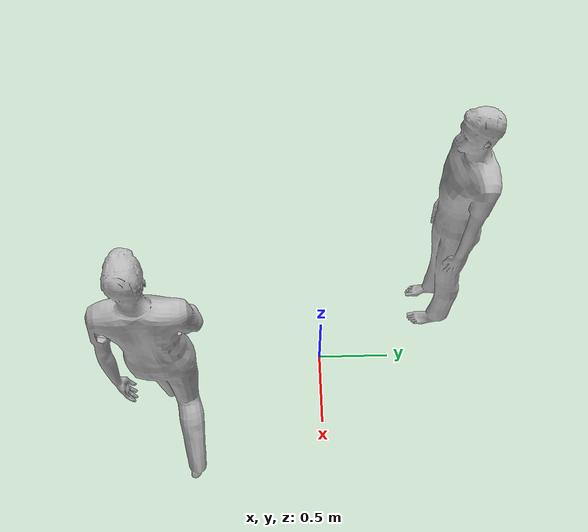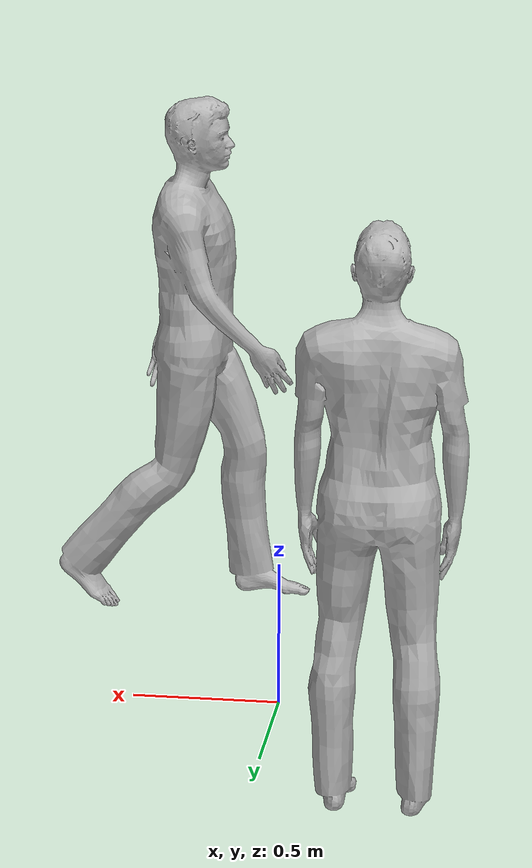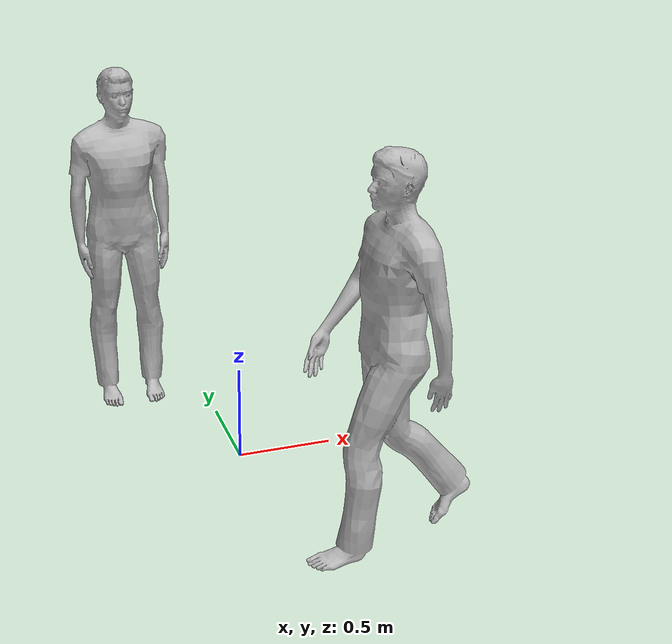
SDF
<?xml version='1.0'?>
<sdf version='1.6'>
  <model name='People'>
    <model name='person_standing'>
      <link name='link'>
        <inertial>
          <pose frame=''>0 -0.1 0.95 0 -0 0</pose>
          <mass>80</mass>
          <inertia>
            <ixx>24.88</ixx>
            <ixy>0</ixy>
            <ixz>0</ixz>
            <iyy>25.73</iyy>
            <iyz>0</iyz>
            <izz>2.48</izz>
          </inertia>
        </inertial>
        <collision name='bottom'>
          <pose frame=''>0 -0.1 0.01 0 -0 0</pose>
          <geometry>
            <box>
              <size>0.5 0.35 0.02</size>
            </box>
          </geometry>
        </collision>
        <collision name='person'>
          <pose frame=''>0 0 0.02 0.04 -0 0</pose>
          <geometry>
            <mesh>
              <uri>model://person_standing/meshes/standing.dae</uri>
            </mesh>
          </geometry>
        </collision>
        <visual name='visual'>
          <pose frame=''>0 0 0.02 0.04 -0 0</pose>
          <geometry>
            <mesh>
              <uri>model://person_standing/meshes/standing.dae</uri>
            </mesh>
          </geometry>
        </visual>
      </link>
      <pose frame=''>-0.422274 0.931872 0 0 -0 0</pose>
    </model>
    <model name='person_walking'>
      <link name='link'>
        <inertial>
          <pose frame=''>0 0 0.95 0 -0 0</pose>
          <mass>80</mass>
          <inertia>
            <ixx>27.82</ixx>
            <ixy>0</ixy>
            <ixz>0</ixz>
            <iyy>24.88</iyy>
            <iyz>0</iyz>
            <izz>4.57</izz>
          </inertia>
        </inertial>
        <collision name='bottom'>
          <pose frame=''>0 0 0.01 0 -0 0</pose>
          <geometry>
            <box>
              <size>0.35 0.75 0.02</size>
            </box>
          </geometry>
        </collision>
        <collision name='person'>
          <pose frame=''>0 0 -0.02 0 -0 0</pose>
          <geometry>
            <mesh>
              <uri>model://person_walking/meshes/walking.dae</uri>
            </mesh>
          </geometry>
        </collision>
        <visual name='visual'>
          <pose frame=''>0 0 -0.02 0 -0 0</pose>
          <geometry>
            <mesh>
              <uri>model://person_walking/meshes/walking.dae</uri>
            </mesh>
          </geometry>
        </visual>
      </link>
      <pose frame=''>0.422271 -0.931874 0 -0.027474 3.9e-05 -1.56936</pose>
    </model>
    <static>0</static>
    <allow_auto_disable>1</allow_auto_disable>
  </model>
</sdf>
